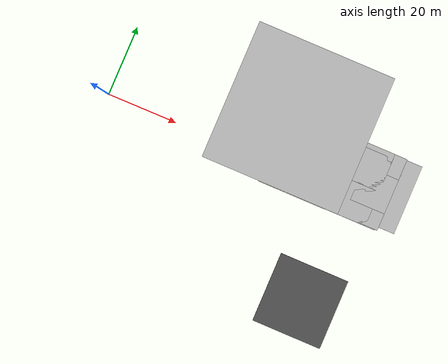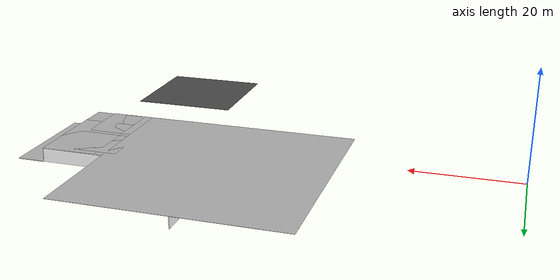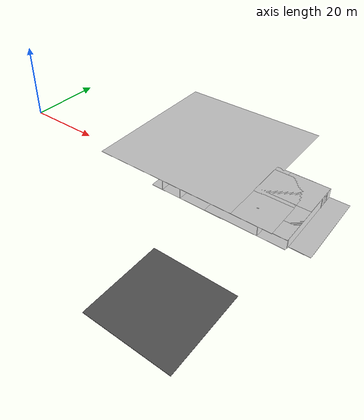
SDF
<sdf version="1.6">
 <world name="default">
  <model name="mainoffice">
   <pose>42.7555 15.4488 0 0 -0 0</pose>
   <link name="Wall_103">
    <pose>7.35091 -1.575 0 0 0 -1.5708</pose>
    <visual name="Wall_103_Visual_0">
     <pose>-9.6287 0 1.25 0 -0 0</pose>
     <geometry><box><size>19.9926 0.15 2.5</size></box></geometry>
     <material>
      <script>
       <uri>model://office_env/materials/scripts</uri>
       <uri>model://office_env/materials/textures</uri>
       <name>wall</name>
      </script>
      <ambient>1 1 1 1</ambient>
     </material>
    </visual>
    <collision name="Wall_103_Collision_0">
     <geometry><box><size>19.9926 0.15 2.5</size></box></geometry>
     <pose>-9.6287 0 1.25 0 -0 0</pose>
    </collision>
    <visual name="Wall_103_Visual_1">
     <pose>10.7463 0 1.25 0 -0 0</pose>
     <geometry><box><size>17.7574 0.15 2.5</size></box></geometry>
     <material>
      <script>
       <uri>model://office_env/materials/scripts</uri>
       <uri>model://office_env/materials/textures</uri>
       <name>wall</name>
      </script>
      <ambient>1 1 1 1</ambient>
     </material>
    </visual>
    <collision name="Wall_103_Collision_1">
     <geometry><box><size>17.7574 0.15 2.5</size></box></geometry>
     <pose>10.7463 0 1.25 0 -0 0</pose>
    </collision>
    <visual name="Wall_103_Visual_2">
     <pose>1.1176 0 2.25 0 -0 0</pose>
     <geometry><box><size>1.5 0.15 0.5</size></box></geometry>
     <material>
      <script>
       <uri>model://office_env/materials/scripts</uri>
       <uri>model://office_env/materials/textures</uri>
       <name>wall</name>
      </script>
      <ambient>1 1 1 1</ambient>
     </material>
    </visual>
    <collision name="Wall_103_Collision_2">
     <geometry><box><size>1.5 0.15 0.5</size></box></geometry>
     <pose>1.1176 0 2.25 0 -0 0</pose>
    </collision>
   </link>
   <link name="Wall_108">
    <pose>11.0759 -0.175002 0 0 -0 3.14159</pose>
    <visual name="Wall_108_Visual_0">
     <pose>-8.20991 0 1.25 0 -0 0</pose>
     <geometry><box><size>18.5802 0.15 2.5</size></box></geometry>
     <material>
      <script>
       <uri>model://office_env/materials/scripts</uri>
       <uri>model://office_env/materials/textures</uri>
       <name>wall</name>
      </script>
      <ambient>1 1 1 1</ambient>
     </material>
    </visual>
    <collision name="Wall_108_Collision_0">
     <geometry><box><size>18.5802 0.15 2.5</size></box></geometry>
     <pose>-8.20991 0 1.25 0 -0 0</pose>
    </collision>
    <visual name="Wall_108_Visual_1">
     <pose>10.0401 0 1.25 0 -0 0</pose>
     <geometry><box><size>14.9198 0.15 2.5</size></box></geometry>
     <material>
      <script>
       <uri>model://office_env/materials/scripts</uri>
       <uri>model://office_env/materials/textures</uri>
       <name>wall</name>
      </script>
      <ambient>1 1 1 1</ambient>
     </material>
    </visual>
    <collision name="Wall_108_Collision_1">
     <geometry><box><size>14.9198 0.15 2.5</size></box></geometry>
     <pose>10.0401 0 1.25 0 -0 0</pose>
    </collision>
    <visual name="Wall_108_Visual_2">
     <pose>1.83018 0 2.25 0 -0 0</pose>
     <geometry><box><size>1.5 0.15 0.5</size></box></geometry>
     <material>
      <script>
       <uri>model://office_env/materials/scripts</uri>
       <uri>model://office_env/materials/textures</uri>
       <name>wall</name>
      </script>
      <ambient>1 1 1 1</ambient>
     </material>
    </visual>
    <collision name="Wall_108_Collision_2">
     <geometry><box><size>1.5 0.15 0.5</size></box></geometry>
     <pose>1.83018 0 2.25 0 -0 0</pose>
    </collision>
   </link>
   <link name="Wall_112">
    <pose>16.5456 -4.78754 0 0 -0 3.14159</pose>
    <visual name="Wall_112_Visual_0">
     <pose>-21.6387 0 1.25 0 -0 0</pose>
     <geometry><box><size>2.72252 0.15 2.5</size></box></geometry>
     <material>
      <script>
       <uri>model://office_env/materials/scripts</uri>
       <uri>model://office_env/materials/textures</uri>
       <name>wall</name>
      </script>
      <ambient>1 1 1 1</ambient>
     </material>
    </visual>
    <collision name="Wall_112_Collision_0">
     <geometry><box><size>2.72252 0.15 2.5</size></box></geometry>
     <pose>-21.6387 0 1.25 0 -0 0</pose>
    </collision>
    <visual name="Wall_112_Visual_1">
     <pose>-15.759 0 1.25 0 -0 0</pose>
     <geometry><box><size>6.03688 0.15 2.5</size></box></geometry>
     <material>
      <script>
       <uri>model://office_env/materials/scripts</uri>
       <uri>model://office_env/materials/textures</uri>
       <name>wall</name>
      </script>
      <ambient>1 1 1 1</ambient>
     </material>
    </visual>
    <collision name="Wall_112_Collision_1">
     <geometry><box><size>6.03688 0.15 2.5</size></box></geometry>
     <pose>-15.759 0 1.25 0 -0 0</pose>
    </collision>
    <visual name="Wall_112_Visual_2">
     <pose>-5.98902 0 1.25 0 -0 0</pose>
     <geometry><box><size>10.5032 0.15 2.5</size></box></geometry>
     <material>
      <script>
       <uri>model://office_env/materials/scripts</uri>
       <uri>model://office_env/materials/textures</uri>
       <name>wall</name>
      </script>
      <ambient>1 1 1 1</ambient>
     </material>
    </visual>
    <collision name="Wall_112_Collision_2">
     <geometry><box><size>10.5032 0.15 2.5</size></box></geometry>
     <pose>-5.98902 0 1.25 0 -0 0</pose>
    </collision>
    <visual name="Wall_112_Visual_3">
     <pose>3.64384 0 1.25 0 -0 0</pose>
     <geometry><box><size>5.76255 0.15 2.5</size></box></geometry>
     <material>
      <script>
       <uri>model://office_env/materials/scripts</uri>
       <uri>model://office_env/materials/textures</uri>
       <name>wall</name>
      </script>
      <ambient>1 1 1 1</ambient>
     </material>
    </visual>
    <collision name="Wall_112_Collision_3">
     <geometry><box><size>5.76255 0.15 2.5</size></box></geometry>
     <pose>3.64384 0 1.25 0 -0 0</pose>
    </collision>
    <visual name="Wall_112_Visual_4">
     <pose>15.5126 0 1.25 0 -0 0</pose>
     <geometry><box><size>14.9749 0.15 2.5</size></box></geometry>
     <material>
      <script>
       <uri>model://office_env/materials/scripts</uri>
       <uri>model://office_env/materials/textures</uri>
       <name>wall</name>
      </script>
      <ambient>1 1 1 1</ambient>
     </material>
    </visual>
    <collision name="Wall_112_Collision_4">
     <geometry><box><size>14.9749 0.15 2.5</size></box></geometry>
     <pose>15.5126 0 1.25 0 -0 0</pose>
    </collision>
    <visual name="Wall_112_Visual_5">
     <pose>-19.5275 0 2.25 0 -0 0</pose>
     <geometry><box><size>1.5 0.15 0.5</size></box></geometry>
     <material>
      <script>
       <uri>model://office_env/materials/scripts</uri>
       <uri>model://office_env/materials/textures</uri>
       <name>wall</name>
      </script>
      <ambient>1 1 1 1</ambient>
     </material>
    </visual>
    <collision name="Wall_112_Collision_5">
     <geometry><box><size>1.5 0.15 0.5</size></box></geometry>
     <pose>-19.5275 0 2.25 0 -0 0</pose>
    </collision>
    <visual name="Wall_112_Visual_6">
     <pose>-11.9906 0 2.25 0 -0 0</pose>
     <geometry><box><size>1.5 0.15 0.5</size></box></geometry>
     <material>
      <script>
       <uri>model://office_env/materials/scripts</uri>
       <uri>model://office_env/materials/textures</uri>
       <name>wall</name>
      </script>
      <ambient>1 1 1 1</ambient>
     </material>
    </visual>
    <collision name="Wall_112_Collision_6">
     <geometry><box><size>1.5 0.15 0.5</size></box></geometry>
     <pose>-11.9906 0 2.25 0 -0 0</pose>
    </collision>
    <visual name="Wall_112_Visual_7">
     <pose>0.01256 0 2.25 0 -0 0</pose>
     <geometry><box><size>1.5 0.15 0.5</size></box></geometry>
     <material>
      <script>
       <uri>model://office_env/materials/scripts</uri>
       <uri>model://office_env/materials/textures</uri>
       <name>wall</name>
      </script>
      <ambient>1 1 1 1</ambient>
     </material>
    </visual>
    <collision name="Wall_112_Collision_7">
     <geometry><box><size>1.5 0.15 0.5</size></box></geometry>
     <pose>0.01256 0 2.25 0 -0 0</pose>
    </collision>
    <visual name="Wall_112_Visual_8">
     <pose>7.27511 0 2.25 0 -0 0</pose>
     <geometry><box><size>1.5 0.15 0.5</size></box></geometry>
     <material>
      <script>
       <uri>model://office_env/materials/scripts</uri>
       <uri>model://office_env/materials/textures</uri>
       <name>wall</name>
      </script>
      <ambient>1 1 1 1</ambient>
     </material>
    </visual>
    <collision name="Wall_112_Collision_8">
     <geometry><box><size>1.5 0.15 0.5</size></box></geometry>
     <pose>7.27511 0 2.25 0 -0 0</pose>
    </collision>
   </link>
   <link name="Wall_153">
    <collision name="Wall_153_Collision">
     <geometry><box><size>16.5 0.15 2.5</size></box></geometry>
     <pose>0 0 1.25 0 -0 0</pose>
    </collision>
    <visual name="Wall_153_Visual">
     <pose>0 0 1.25 0 -0 0</pose>
     <geometry><box><size>16.5 0.15 2.5</size></box></geometry>
     <material>
      <script>
       <uri>model://office_env/materials/scripts</uri>
       <uri>model://office_env/materials/textures</uri>
       <name>wall</name>
      </script>
      <ambient>1 1 1 1</ambient>
     </material>
    </visual>
    <pose>12.5271 -13.0476 0 0 0 -1.5708</pose>
   </link>
   <link name="Wall_158">
    <collision name="Wall_158_Collision">
     <geometry><box><size>16.5 0.15 2.5</size></box></geometry>
     <pose>0 0 1.25 0 -0 0</pose>
    </collision>
    <visual name="Wall_158_Visual">
     <pose>0 0 1.25 0 -0 0</pose>
     <geometry><box><size>16.5 0.15 2.5</size></box></geometry>
     <material>
      <script>
       <uri>model://office_env/materials/scripts</uri>
       <uri>model://office_env/materials/textures</uri>
       <name>wall</name>
      </script>
      <ambient>1 1 1 1</ambient>
     </material>
    </visual>
    <pose>32.6255 -12.9545 0 0 0 -1.5708</pose>
   </link>
   <link name="Wall_42">
    <collision name="Wall_42_Collision">
     <geometry><box><size>11 0.15 2.5</size></box></geometry>
     <pose>0 0 1.25 0 -0 0</pose>
    </collision>
    <visual name="Wall_42_Visual">
     <pose>0 0 1.25 0 -0 0</pose>
     <geometry><box><size>11 0.15 2.5</size></box></geometry>
     <material>
      <script>
       <uri>model://office_env/materials/scripts</uri>
       <uri>model://office_env/materials/textures</uri>
       <name>wall</name>
      </script>
      <ambient>1 1 1 1</ambient>
     </material>
    </visual>
    <pose>33.9259 -0.175002 0 0 -0 0</pose>
   </link>
   <link name="Wall_43">
    <pose>39.3509 -10.35 0 0 0 -1.5708</pose>
    <visual name="Wall_43_Visual_0">
     <pose>-9.42687 0 1.25 0 -0 0</pose>
     <geometry><box><size>1.64626 0.15 2.5</size></box></geometry>
     <material>
      <script>
       <uri>model://office_env/materials/scripts</uri>
       <uri>model://office_env/materials/textures</uri>
       <name>wall</name>
      </script>
      <ambient>1 1 1 1</ambient>
     </material>
    </visual>
    <collision name="Wall_43_Collision_0">
     <geometry><box><size>1.64626 0.15 2.5</size></box></geometry>
     <pose>-9.42687 0 1.25 0 -0 0</pose>
    </collision>
    <visual name="Wall_43_Visual_1">
     <pose>1.57313 0 1.25 0 -0 0</pose>
     <geometry><box><size>17.3537 0.15 2.5</size></box></geometry>
     <material>
      <script>
       <uri>model://office_env/materials/scripts</uri>
       <uri>model://office_env/materials/textures</uri>
       <name>wall</name>
      </script>
      <ambient>1 1 1 1</ambient>
     </material>
    </visual>
    <collision name="Wall_43_Collision_1">
     <geometry><box><size>17.3537 0.15 2.5</size></box></geometry>
     <pose>1.57313 0 1.25 0 -0 0</pose>
    </collision>
    <visual name="Wall_43_Visual_2">
     <pose>-7.85374 0 2.25 0 -0 0</pose>
     <geometry><box><size>1.5 0.15 0.5</size></box></geometry>
     <material>
      <script>
       <uri>model://office_env/materials/scripts</uri>
       <uri>model://office_env/materials/textures</uri>
       <name>wall</name>
      </script>
      <ambient>1 1 1 1</ambient>
     </material>
    </visual>
    <collision name="Wall_43_Collision_2">
     <geometry><box><size>1.5 0.15 0.5</size></box></geometry>
     <pose>-7.85374 0 2.25 0 -0 0</pose>
    </collision>
   </link>
   <static>1</static>
  </model>
  <model name="asphalt_plane">
   <static>1</static>
   <link name="link">
    <collision name="collision"><geometry><box><size>20 20 0.1</size></box></geometry></collision>
    <visual name="visual">
     <cast_shadows>0</cast_shadows>
     <geometry><box><size>20 20 0.1</size></box></geometry>
     <material>
      <script>
       <uri>model://asphalt_plane/materials/scripts</uri>
       <uri>model://asphalt_plane/materials/textures</uri>
       <name>vrc/asphalt</name>
      </script>
     </material>
    </visual>
   </link>
   <pose>70.7475 -31.5972 0 0 -0 0</pose>
  </model>
  <model name="Box_36x15W_clone_2">
   <link name="Wall">
    <pose>0 0 0.1985 0 -0 0</pose>
    <inertial>
     <mass>5</mass>
     <inertia><ixx>0.1022</ixx><iyy>0.4107</iyy><izz>0.3815</izz><ixy>0</ixy><ixz>0</ixz><iyz>0</iyz></inertia>
    </inertial>
    <collision name="Wall_Collision"><geometry><box><size>0.91 0.296 0.397</size></box></geometry></collision>
    <visual name="Wall_Visual">
     <geometry><box><size>0.91 0.296 0.397</size></box></geometry>
     <material>
      <script>
       <uri>model://office_env/materials/scripts</uri>
       <uri>model://office_env/materials/textures</uri>
       <name>wall</name>
      </script>
      <ambient>1 1 1 1</ambient>
     </material>
    </visual>
   </link>
   <static>1</static>
   <pose>76.7054 0.802933 0 0 -0 0</pose>
  </model>
  <model name="Box_36x15W_clone_3">
   <link name="Wall">
    <pose>0 0 0.1985 0 -0 0</pose>
    <inertial>
     <mass>5</mass>
     <inertia><ixx>0.1022</ixx><iyy>0.4107</iyy><izz>0.3815</izz><ixy>0</ixy><ixz>0</ixz><iyz>0</iyz></inertia>
    </inertial>
    <collision name="Wall_Collision"><geometry><box><size>0.91 0.296 0.397</size></box></geometry></collision>
    <visual name="Wall_Visual">
     <geometry><box><size>0.91 0.296 0.397</size></box></geometry>
     <material>
      <script>
       <uri>model://office_env/materials/scripts</uri>
       <uri>model://office_env/materials/textures</uri>
       <name>wall</name>
      </script>
      <ambient>1 1 1 1</ambient>
     </material>
    </visual>
   </link>
   <static>1</static>
   <pose>79.4097 0.802084 0 0 -0 0</pose>
  </model>
  <model name="Floor_30">
   <link name="main">
    <pose>0 0 0.01 0 -0 0</pose>
    <collision name="main_Collision"><geometry><box><size>20 20 0.05</size></box></geometry></collision>
    <visual name="main_Visual">
     <geometry><box><size>20 20 0.05</size></box></geometry>
     <material>
      <script>
       <uri>model://Floor_medium/materials/scripts</uri>
       <uri>model://Floor_medium/materials/textures</uri>
       <name>floor</name>
      </script>
     </material>
    </visual>
   </link>
   <static>1</static>
   <pose>72.0637 4.23485 0 0 -0 0</pose>
  </model>
  <model name="Floor_31">
   <link name="main">
    <pose>0 0 0.01 0 -0 0</pose>
    <collision name="main_Collision"><geometry><box><size>20 20 0.05</size></box></geometry></collision>
    <visual name="main_Visual">
     <geometry><box><size>20 20 0.05</size></box></geometry>
     <material>
      <script>
       <uri>model://Floor_medium/materials/scripts</uri>
       <uri>model://Floor_medium/materials/textures</uri>
       <name>floor</name>
      </script>
     </material>
    </visual>
   </link>
   <static>1</static>
   <pose>72.1138 5.20177 0 0 -0 0</pose>
  </model>
  <model name="Floor_32">
   <link name="main">
    <pose>0 0 0.01 0 -0 0</pose>
    <collision name="main_Collision"><geometry><box><size>20 20 0.05</size></box></geometry></collision>
    <visual name="main_Visual">
     <geometry><box><size>20 20 0.05</size></box></geometry>
     <material>
      <script>
       <uri>model://Floor_medium/materials/scripts</uri>
       <uri>model://Floor_medium/materials/textures</uri>
       <name>floor</name>
      </script>
     </material>
    </visual>
   </link>
   <static>1</static>
   <pose>57.0667 4.14407 0 0 -0 0</pose>
  </model>
  <model name="Floor_33">
   <link name="main">
    <pose>0 0 0.01 0 -0 0</pose>
    <collision name="main_Collision"><geometry><box><size>10 10 0.05</size></box></geometry></collision>
    <visual name="main_Visual">
     <geometry><box><size>10 10 0.05</size></box></geometry>
     <material>
      <script>
       <uri>model://Floor_small/materials/scripts</uri>
       <uri>model://Floor_small/materials/textures</uri>
       <name>floor</name>
      </script>
     </material>
    </visual>
   </link>
   <static>1</static>
   <pose>58.8887 15.1913 0 0 -0 0</pose>
  </model>
  <model name="outdoor_plane_14">
   <static>1</static>
   <link name="link">
    <collision name="collision"><geometry><box><size>5 20 0.1</size></box></geometry></collision>
    <visual name="visual">
     <cast_shadows>0</cast_shadows>
     <geometry><box><size>5 20 0.1</size></box></geometry>
     <material>
      <script>
       <uri>model://outdoor_plane/materials/scripts</uri>
       <uri>model://outdoor_plane/materials/textures</uri>
       <name>outds/Image</name>
      </script>
     </material>
    </visual>
   </link>
   <pose>84.69 5.3843 0 0 -0 0</pose>
  </model>
  <model name="Floor">
   <link name="main">
    <pose>0 0 0.01 0 -0 0</pose>
    <collision name="main_Collision"><geometry><box><size>5 5 0.05</size></box></geometry></collision>
    <visual name="main_Visual">
     <geometry><box><size>5 5 0.05</size></box></geometry>
     <material>
      <script>
       <uri>model://Floor_verysmall/materials/scripts</uri>
       <uri>model://Floor_verysmall/materials/textures</uri>
       <name>floor</name>
      </script>
     </material>
    </visual>
   </link>
   <static>1</static>
   <pose>82.4986 11.8686 0 0 -0 0</pose>
  </model>
  <model name="Floor_3_clone_10_clone">
   <link name="main">
    <pose>0 0 0.01 0 -0 0</pose>
    <collision name="main_Collision"><geometry><box><size>10 10 0.05</size></box></geometry></collision>
    <visual name="main_Visual">
     <geometry><box><size>10 10 0.05</size></box></geometry>
     <material>
      <script>
       <uri>model://Floor_small/materials/scripts</uri>
       <uri>model://Floor_small/materials/textures</uri>
       <name>floor</name>
      </script>
     </material>
    </visual>
   </link>
   <static>1</static>
   <pose>73.698 -0.729702 2.5 0 -0 0</pose>
  </model>
  <model name="Floor_3_clone_10_clone_0">
   <link name="main">
    <pose>0 0 0.01 0 -0 0</pose>
    <collision name="main_Collision"><geometry><box><size>10 10 0.05</size></box></geometry></collision>
    <visual name="main_Visual">
     <geometry><box><size>10 10 0.05</size></box></geometry>
     <material>
      <script>
       <uri>model://Floor_small/materials/scripts</uri>
       <uri>model://Floor_small/materials/textures</uri>
       <name>floor</name>
      </script>
     </material>
    </visual>
   </link>
   <static>1</static>
   <pose>73.6143 9.05298 2.5 0 -0 0</pose>
  </model>
  <model name="Floor_3_clone_10_clone_1">
   <link name="main">
    <pose>0 0 0.01 0 -0 0</pose>
    <collision name="main_Collision"><geometry><box><size>10 10 0.05</size></box></geometry></collision>
    <visual name="main_Visual">
     <geometry><box><size>10 10 0.05</size></box></geometry>
     <material>
      <script>
       <uri>model://Floor_small/materials/scripts</uri>
       <uri>model://Floor_small/materials/textures</uri>
       <name>floor</name>
      </script>
     </material>
    </visual>
   </link>
   <static>1</static>
   <pose>73.5381 10.3618 2.5 0 -0 0</pose>
  </model>
  <model name="Floor_3_clone_10_clone_2">
   <link name="main">
    <pose>0 0 0.01 0 -0 0</pose>
    <collision name="main_Collision"><geometry><box><size>10 10 0.05</size></box></geometry></collision>
    <visual name="main_Visual">
     <geometry><box><size>10 10 0.05</size></box></geometry>
     <material>
      <script>
       <uri>model://Floor_small/materials/scripts</uri>
       <uri>model://Floor_small/materials/textures</uri>
       <name>floor</name>
      </script>
     </material>
    </visual>
   </link>
   <static>1</static>
   <pose>77.1185 -0.570043 2.5 0 -0 0</pose>
  </model>
  <model name="Floor_3_clone_10_clone_3">
   <link name="main">
    <pose>0 0 0.01 0 -0 0</pose>
    <collision name="main_Collision"><geometry><box><size>10 10 0.05</size></box></geometry></collision>
    <visual name="main_Visual">
     <geometry><box><size>10 10 0.05</size></box></geometry>
     <material>
      <script>
       <uri>model://Floor_small/materials/scripts</uri>
       <uri>model://Floor_small/materials/textures</uri>
       <name>floor</name>
      </script>
     </material>
    </visual>
   </link>
   <static>1</static>
   <pose>77.1026 10.3141 2.5 0 -0 0</pose>
  </model>
  <model name="Floor_3_clone_10_clone_4">
   <link name="main">
    <pose>0 0 0.01 0 -0 0</pose>
    <collision name="main_Collision"><geometry><box><size>10 10 0.05</size></box></geometry></collision>
    <visual name="main_Visual">
     <geometry><box><size>10 10 0.05</size></box></geometry>
     <material>
      <script>
       <uri>model://Floor_small/materials/scripts</uri>
       <uri>model://Floor_small/materials/textures</uri>
       <name>floor</name>
      </script>
     </material>
    </visual>
   </link>
   <static>1</static>
   <pose>77.1663 4.3134 2.5 0 -0 0</pose>
  </model>
  <model name="Floor_5_clone_0_clone">
   <link name="main">
    <pose>0 0 0.01 0 -0 0</pose>
    <collision name="main_Collision"><geometry><box><size>40 40 0.05</size></box></geometry></collision>
    <visual name="main_Visual">
     <geometry><box><size>40 40 0.05</size></box></geometry>
     <material>
      <script>
       <uri>model://Floor_large/materials/scripts</uri>
       <uri>model://Floor_large/materials/textures</uri>
       <name>floor</name>
      </script>
     </material>
    </visual>
   </link>
   <static>1</static>
   <pose>50.5427 14.2776 2.5 0 -0 0</pose>
  </model>
 </world>
</sdf>
